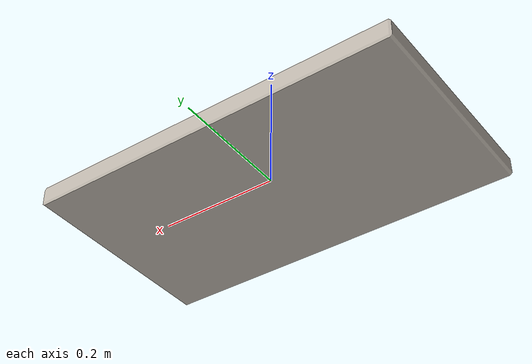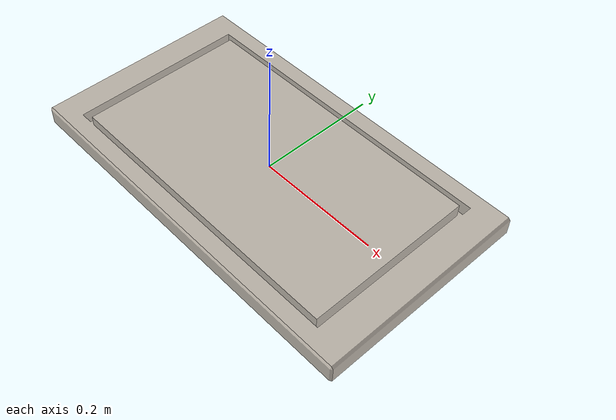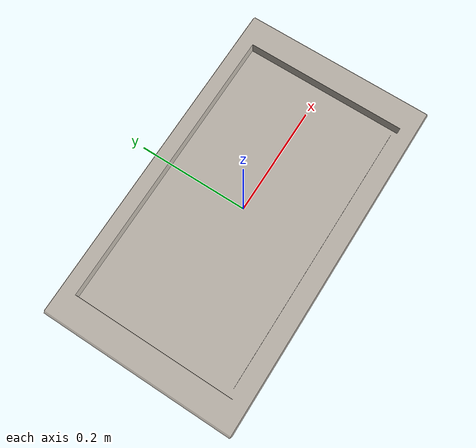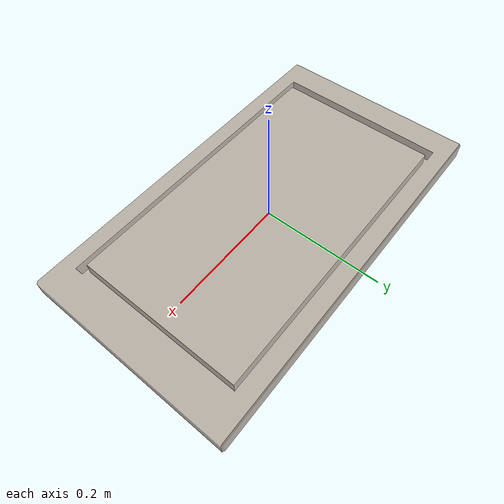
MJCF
<mujoco model="Board">
  <default>
    <default class="visual">
      <geom group="2" type="mesh" contype="0" conaffinity="0"/>
    </default>
    <default class="collision">
      <geom group="3" rgba="0 0 1 1"/>
    </default>
  </default>
  <asset>
    <texture type="2d" name="texture" file="texture.png"/>
    <material name="Material.003" texture="texture" specular="0.5" shininess="0.25"/>
    <mesh file="Board.obj"/>
  </asset>
  <worldbody>
    <body name="Board">
      <geom material="Material.003" mesh="Board" class="visual"/>

      <geom type="box" size="0.31 0.17 0.0145" class="collision"/>
    </body>
  </worldbody>
</mujoco>
